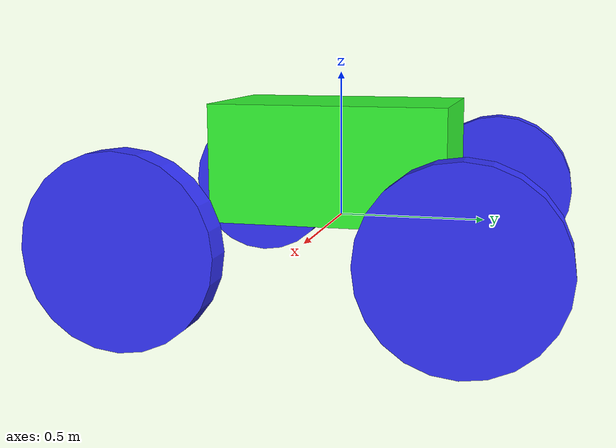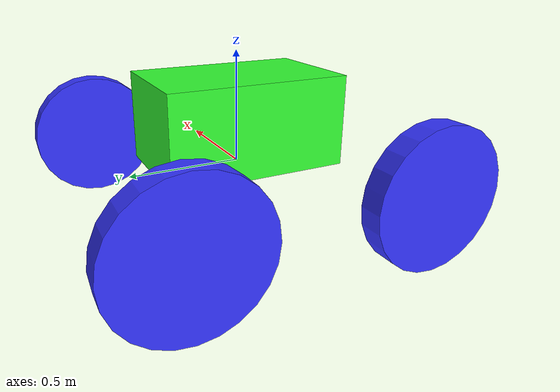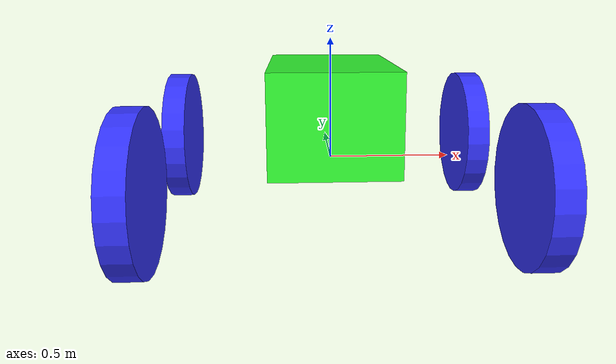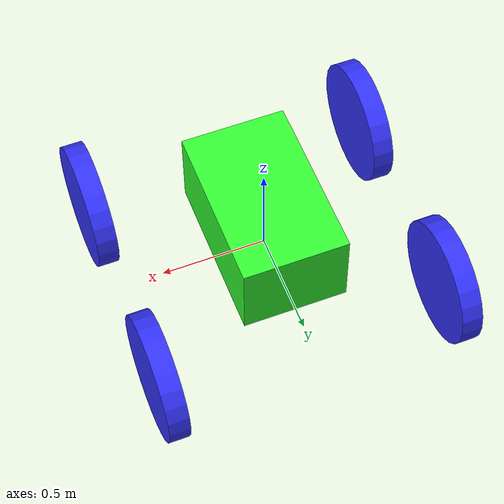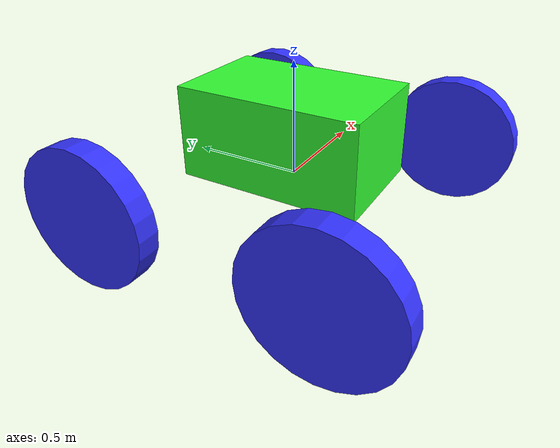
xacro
<?xml version="1.0"?>

<robot name="rover" xmlns:xacro="http://www.ros.org/wiki/xacro" xmlns:gazebo="http://gazebosim.org/schema">>
  <!-- Declaring Constants -->
  <xacro:property name="wheel_radius" value="0.3" />
  <xacro:property name="wheel_length" value="0.1" />
  <xacro:property name="base_origin" value="0 0 0.2" />
  <xacro:property name="base_size" value="0.5 0.8 0.4" />

  <link name="base_link">
  </link>

  <link name="rover_link">

    <visual>
      <origin xyz="${base_origin}" rpy="0 0 0"/>
      <geometry>
        <box size="${base_size}" />
      </geometry>
      <material name="green">
        <color rgba="0.2 1 0.2 1"/>
      </material>
    </visual>
    <collision>
      <origin xyz="${base_origin}" rpy="0 0 0"/>
      <geometry>
        <box size="${base_size}" />
      </geometry>
    </collision>
    <inertial>
      <origin xyz="${base_origin}" rpy="0 0 0" />
      <mass value="1" />
      <inertia ixx="0.17" ixy="0.0" ixz="0.0" iyy="0.17" iyz="0.0" izz="0.17" />
    </inertial>
  </link>

  <joint name="rover_base_joint" type="fixed">
    <parent link="base_link"/>
    <child link="rover_link"/>
    <origin xyz="0 0 0"/>
  </joint>

  <!-- Wheels go BRRRRR -->
  <xacro:macro name="wheel" params="name x_wheel y_wheel tilt_sign">
    <link name="${name}">
    <xacro:property name="tilt" value="0 ${tilt_sign*pi/2} 0" />

      <visual>
        <origin xyz="0 0 0" rpy="${tilt}" />
        <material name="blue">
          <color rgba="0.2 0.2 1 1"/>
        </material>
        <geometry>
          <cylinder radius="${wheel_radius}" length="${wheel_length}" />
        </geometry>
      </visual>
      <collision>
        <origin xyz="0 0 0" rpy="${tilt}"/>
        <geometry>
          <cylinder radius="${wheel_radius}" length="${wheel_length}" />
        </geometry>
      </collision>
      <inertial>
        <origin xyz="0 0 0" rpy="${tilt}"/>
        <mass value="0.5" />
        <inertia ixx="0.17" ixy="0.0" ixz="0.0" iyy="0.17" iyz="0.0" izz="0.17" />
      </inertial>
    </link>
    <joint name="${name}_joint" type="continuous">
      <parent link="base_link" />
      <child link="${name}" />
      <origin xyz="${x_wheel} ${y_wheel} 0" rpy="0 0 0" />
      <axis xyz="1 0 0" />
    </joint>
  </xacro:macro>

  <!-- Instantiate wheels -->
  <xacro:wheel name="front_left_wheel" x_wheel="-0.7" y_wheel="0.5" tilt_sign="-1"/>
  <xacro:wheel name="front_right_wheel" x_wheel="0.7" y_wheel="0.5" tilt_sign="1"/>
  <xacro:wheel name="rear_left_wheel" x_wheel="-0.7" y_wheel="-0.5" tilt_sign="-1"/>
  <xacro:wheel name="rear_right_wheel" x_wheel="0.7" y_wheel="-0.5" tilt_sign="1"/>

  <ros2_control name="GazeboSystem" type="system">
    <hardware>
      <plugin>gazebo_ros2_control/GazeboSystem</plugin>
    </hardware>

    <joint name="front_left_wheel_joint">
      <command_interface name="velocity">
        <param name="min">-10</param>
        <param name="max">10</param>
      </command_interface>
      <state_interface name="position" />
      <state_interface name="velocity" />
    </joint>

    <joint name="front_right_wheel_joint">
      <command_interface name="velocity">
        <param name="min">-10</param>
        <param name="max">10</param>
      </command_interface>
      <state_interface name="velocity" />
      <state_interface name="position" />
    </joint>

    <joint name="rear_left_wheel_joint">
      <command_interface name="velocity">
        <param name="min">-10</param>
        <param name="max">10</param>
      </command_interface>
      <state_interface name="velocity" />
      <state_interface name="position" />
    </joint>

    <joint name="rear_right_wheel_joint">
      <command_interface name="velocity">
        <param name="min">-10</param>
        <param name="max">10</param>
      </command_interface>
      <state_interface name="velocity" />
      <state_interface name="position" />
    </joint>

  </ros2_control>

  <gazebo>
    <plugin filename="libgazebo_ros2_control.so" name="gazebo_ros2_control">
      <parameters>$(find rover_control)/config/my_controller.yaml</parameters>
    </plugin>

  </gazebo>

  <gazebo reference="rover_link">
    <material>Gazebo/Green</material>
  </gazebo>

</robot>
